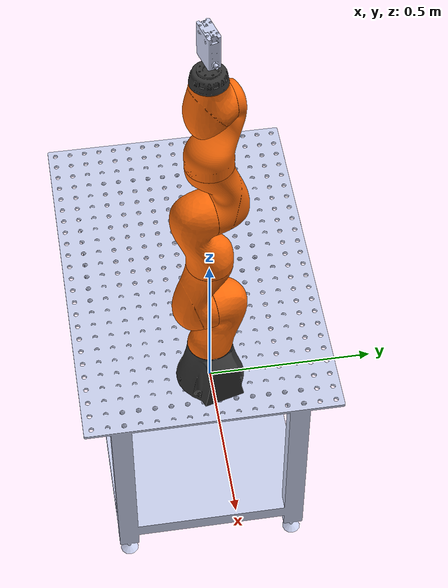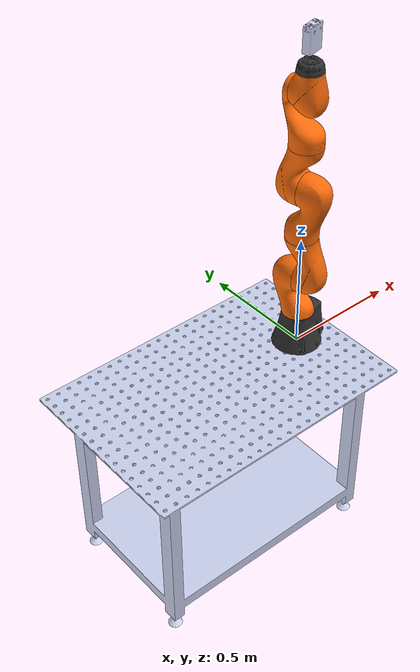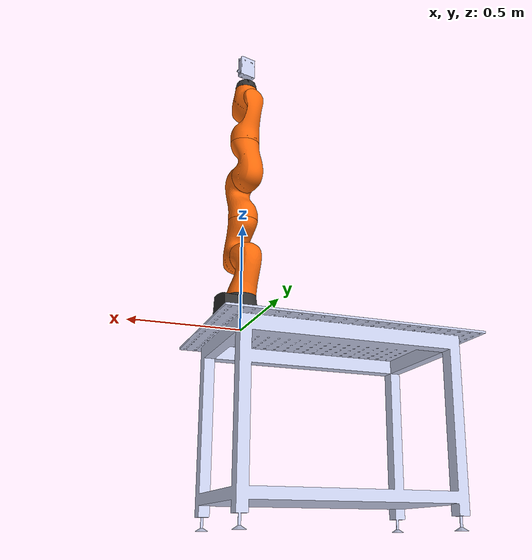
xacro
<?xml version="1.0"?>
<robot xmlns:xacro="http://www.ros.org/wiki/xacro" name="iiwa_zimmer">

  <xacro:include filename="$(find iiwa_description)/urdf/materials.xacro" />
  <xacro:include filename="$(find iiwa_description)/urdf/iiwa7.xacro"/>
  <xacro:include filename="$(find iiwa_description)/urdf/Table.xacro"/>
  <xacro:include filename="$(find iiwa_description)/urdf/zimmer.xacro"/>
  <xacro:arg name="hardware_interface" default="PositionJointInterface"/>
  <xacro:arg name="origin_xyz" default="0 0 0"/>
  <xacro:arg name="origin_rpy" default="0 0 0"/>
  <xacro:arg name="robot_name" default="iiwa"/>

  <link name="world"/>

  <xacro:table hardware_interface="$(arg hardware_interface)" robot_name="Table" parent="world">
    <origin xyz="$(arg origin_xyz)" rpy="$(arg origin_rpy)" />
  </xacro:table>

  <xacro:iiwa7 hardware_interface="$(arg hardware_interface)" robot_name="iiwa" parent="table_link">
    <origin xyz="0 0 0" rpy="1.5708 2.87979 0" />
  </xacro:iiwa7>

  <xacro:zimmer></xacro:zimmer>

  <joint name="zimmer_to_iiwa" type="fixed">
    <parent link="iiwa_link_ee"/>
    <child link="GEP5006IO-00-A(0)"/>
    <origin xyz="0 0 0.03" rpy="0 0 0"/>
  </joint>

</robot>

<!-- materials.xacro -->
<robot>

  <material name="Black">
    <color rgba="0.0 0.0 0.0 1.0"/>
  </material>

  <material name="Blue">
    <color rgba="0.0 0.0 0.8 1.0"/>
  </material>

  <material name="Green">
    <color rgba="0.0 0.8 0.0 1.0"/>
  </material>

  <material name="Grey">
    <color rgba="0.2 0.2 0.2 1.0"/>
  </material>

  <material name="Orange">
    <color rgba="${255/255} ${108/255} ${10/255} 1.0"/>
  </material>

  <material name="Brown">
    <color rgba="${222/255} ${207/255} ${195/255} 1.0"/>
  </material>

  <material name="Red">
    <color rgba="0.8 0.0 0.0 1.0"/>
  </material>

  <material name="White">
    <color rgba="1.0 1.0 1.0 1.0"/>
  </material>

</robot>

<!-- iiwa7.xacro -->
<robot xmlns:xacro="http://www.ros.org/wiki/xacro">

  <!-- Import all Gazebo-customization elements, including Gazebo colors -->
  <xacro:include filename="$(find iiwa_description)/urdf/iiwa.gazebo.xacro" />
  <!-- Import Transmissions -->
  <xacro:include filename="$(find iiwa_description)/urdf/iiwa.transmission.xacro" />
  <!-- Include Utilities -->
  <xacro:include filename="$(find iiwa_description)/urdf/utilities.xacro" />

  <!-- some constants -->
  <xacro:property name="safety_controller_k_pos" value="100" />
  <xacro:property name="safety_controller_k_vel" value="2" />
  <xacro:property name="joint_damping" value="0.5" />
  <xacro:property name="max_effort" value="300"/>
  <xacro:property name="max_velocity" value="10"/>

  <xacro:macro name="iiwa7" params="parent hardware_interface robot_name *origin">

    <!--joint between {parent} and link_0-->
    <joint name="${parent}_${robot_name}_joint" type="fixed">
      <xacro:insert_block name="origin"/>
      <parent link="${parent}"/>
      <child link="${robot_name}_link_0"/>
    </joint>

    <link name="${robot_name}_link_0">
      <inertial>
        <origin xyz="-0.1 0 0.07" rpy="0 0 0"/>
        <mass value="5"/>
        <inertia ixx="0.05"  ixy="0"  ixz="0" iyy="0.06" iyz="0" izz="0.03" />
      </inertial>

      <visual>
        <origin xyz="0 0 0" rpy="0 0 0"/>
        <geometry>
          <mesh filename="package://iiwa_description/meshes/iiwa7/visual/link_0.stl"/>
        </geometry>
        <material name="Grey"/>
      </visual>

      <collision>
        <origin xyz="0 0 0" rpy="0 0 0"/>
        <geometry>
          <mesh filename="package://iiwa_description/meshes/iiwa7/collision/link_0.stl"/>
        </geometry>
      </collision>

    </link>

    <!-- joint between link_0 and link_1 -->
    <joint name="${robot_name}_joint_1" type="revolute">
      <parent link="${robot_name}_link_0"/>
      <child link="${robot_name}_link_1"/>
      <origin xyz="0 0 0.15" rpy="0 0 0"/>
      <axis xyz="0 0 1"/>
      <limit lower="${-170 * PI / 180}" upper="${170 * PI / 180}"
             effort="${max_effort}" velocity="${max_velocity}" />
      <safety_controller soft_lower_limit="${-168 * PI / 180}"
                         soft_upper_limit="${168 * PI / 180}"
                         k_position="${safety_controller_k_pos}"
                         k_velocity="${safety_controller_k_vel}"/>
      <dynamics damping="${joint_damping}"/>
    </joint>

    <link name="${robot_name}_link_1">
      <inertial>
        <origin xyz="0 -0.03 0.12" rpy="0 0 0"/>
        <mass value="3.4525"/>
        <inertia ixx="0.02183"  ixy="0"  ixz="0" iyy="0.007703" iyz="-0.003887" izz="0.02083" />
      </inertial>
      <visual>
        <origin xyz="0 0 0.0075" rpy="0 0 0"/>
        <geometry>
          <mesh filename="package://iiwa_description/meshes/iiwa7/visual/link_1.stl"/>
        </geometry>
        <material name="Orange"/>
      </visual>
      <collision>
        <origin xyz="0 0 0.0075" rpy="0 0 0"/>
        <geometry>
          <mesh filename="package://iiwa_description/meshes/iiwa7/collision/link_1.stl"/>
        </geometry>
      </collision>
    </link>

    <joint name="${robot_name}_joint_2" type="revolute">
      <parent link="${robot_name}_link_1"/>
      <child link="${robot_name}_link_2"/>
      <origin xyz="0 0 0.19" rpy="${PI / 2}   0 ${PI}"/>
      <axis xyz="0 0 1"/>
      <limit lower="${-120 * PI / 180}" upper="${120 * PI / 180}"
             effort="${max_effort}" velocity="${max_velocity}" />
      <safety_controller soft_lower_limit="${-118 * PI / 180}"
                         soft_upper_limit="${118 * PI / 180}"
                         k_position="${safety_controller_k_pos}"
                         k_velocity="${safety_controller_k_vel}"/>
      <dynamics damping="${joint_damping}"/>
    </joint>

    <link name="${robot_name}_link_2">
      <inertial>
        <origin xyz="0.0003 0.059 0.042" rpy="0 0 0"/>
        <mass value="3.4821"/>
        <inertia ixx="0.02076"  ixy="0"  ixz="-0.003626" iyy="0.02179" iyz="0" izz="0.00779" />
      </inertial>
      <visual>
        <origin xyz="0 0 0" rpy="0 0 0"/>
        <geometry>
          <mesh filename="package://iiwa_description/meshes/iiwa7/visual/link_2.stl"/>
        </geometry>
        <material name="Orange"/>
      </visual>

      <collision>
        <origin xyz="0 0 0" rpy="0 0 0"/>
        <geometry>
          <mesh filename="package://iiwa_description/meshes/iiwa7/collision/link_2.stl"/>
        </geometry>
      </collision>
    </link>

    <joint name="${robot_name}_joint_3" type="revolute">
      <parent link="${robot_name}_link_2"/>
      <child link="${robot_name}_link_3"/>
      <origin xyz="0 0.21 0" rpy="${PI / 2} 0 ${PI}"/>
      <axis xyz="0 0 1"/>
      <limit lower="${-170 * PI / 180}" upper="${170 * PI / 180}"
             effort="${max_effort}" velocity="${max_velocity}" />
      <safety_controller soft_lower_limit="${-168 * PI / 180}"
                         soft_upper_limit="${168 * PI / 180}"
                         k_position="${safety_controller_k_pos}"
                         k_velocity="${safety_controller_k_vel}"/>
      <dynamics damping="${joint_damping}"/>
    </joint>

    <link name="${robot_name}_link_3">
      <inertial>
        <origin xyz="0 0.03 0.13" rpy="0 0 0"/>
        <mass value="4.05623"/>
        <inertia ixx="0.03204"  ixy="0"  ixz="0" iyy="0.00972" iyz="0.006227" izz="0.03042" />
      </inertial>

      <visual>
        <origin xyz="0 0 -0.026" rpy="0 0 0"/>
        <geometry>
          <mesh filename="package://iiwa_description/meshes/iiwa7/visual/link_3.stl"/>
        </geometry>
        <material name="Orange"/>
      </visual>

      <collision>
        <origin xyz="0 0 -0.026" rpy="0 0 0"/>
        <geometry>
          <mesh filename="package://iiwa_description/meshes/iiwa7/collision/link_3.stl"/>
        </geometry>
      </collision>

    </link>

    <joint name="${robot_name}_joint_4" type="revolute">
      <parent link="${robot_name}_link_3"/>
      <child link="${robot_name}_link_4"/>
      <origin xyz="0 0 0.19" rpy="${PI / 2} 0 0"/>
      <axis xyz="0 0 1"/>
      <limit lower="${-120 * PI / 180}" upper="${120 * PI / 180}"
             effort="${max_effort}" velocity="${max_velocity}" />
      <safety_controller soft_lower_limit="${-118 * PI / 180}"
                         soft_upper_limit="${118 * PI / 180}"
                         k_position="${safety_controller_k_pos}"
                         k_velocity="${safety_controller_k_vel}"/>
      <dynamics damping="${joint_damping}"/>
    </joint>

    <link name="${robot_name}_link_4">
      <inertial>
        <origin xyz="0 0.067 0.034" rpy="0 0 0"/>
        <mass value="3.4822"/>
        <inertia ixx="0.02178"  ixy="0"  ixz="0" iyy="0.02075" iyz="-0.003625" izz="0.007785" />
      </inertial>

      <visual>
        <origin xyz="0 0 0" rpy="0 0 0"/>
        <geometry>
          <mesh filename="package://iiwa_description/meshes/iiwa7/visual/link_4.stl"/>
        </geometry>
        <material name="Orange"/>
      </visual>

      <collision>
        <origin xyz="0 0 0" rpy="0 0 0"/>
        <geometry>
          <mesh filename="package://iiwa_description/meshes/iiwa7/collision/link_4.stl"/>
        </geometry>
      </collision>
    </link>

    <joint name="${robot_name}_joint_5" type="revolute">
      <parent link="${robot_name}_link_4"/>
      <child link="${robot_name}_link_5"/>
      <origin xyz="0 0.21 0" rpy="${-PI / 2} ${PI} 0"/>
      <axis xyz="0 0 1"/>
      <limit lower="${-170 * PI / 180}" upper="${170 * PI / 180}"
             effort="${max_effort}" velocity="${max_velocity}" />
      <safety_controller soft_lower_limit="${-168 * PI / 180}"
                         soft_upper_limit="${168 * PI / 180}"
                         k_position="${safety_controller_k_pos}"
                         k_velocity="${safety_controller_k_vel}"/>
      <dynamics damping="${joint_damping}"/>
    </joint>

    <link name="${robot_name}_link_5">
      <inertial>
        <origin xyz="0.0001 0.021 0.076" rpy="0 0 0"/>
        <mass value="2.1633"/>
        <inertia ixx="0.01287"  ixy="0"  ixz="0" iyy="0.005708" iyz="-0.003946" izz="0.01112" />
      </inertial>

      <visual>
        <origin xyz="0 0 -0.026" rpy="0 0 0"/>
        <geometry>
          <mesh filename="package://iiwa_description/meshes/iiwa7/visual/link_5.stl"/>
        </geometry>
        <material name="Orange"/>
      </visual>

      <collision>
        <origin xyz="0 0 -0.026" rpy="0 0 0"/>
        <geometry>
          <mesh filename="package://iiwa_description/meshes/iiwa7/collision/link_5.stl"/>
        </geometry>
      </collision>
    </link>

    <joint name="${robot_name}_joint_6" type="revolute">
      <parent link="${robot_name}_link_5"/>
      <child link="${robot_name}_link_6"/>
      <origin xyz="0 0.06070 0.19" rpy="${PI / 2} 0 0"/>
      <axis xyz="0 0 1"/>
      <limit lower="${-120 * PI / 180}" upper="${120 * PI / 180}"
             effort="${max_effort}" velocity="${max_velocity}" />
      <safety_controller soft_lower_limit="${-118 * PI / 180}"
                         soft_upper_limit="${118 * PI / 180}"
                         k_position="${safety_controller_k_pos}"
                         k_velocity="${safety_controller_k_vel}"/>
      <dynamics damping="${joint_damping}"/>
    </joint>

    <link name="${robot_name}_link_6">
      <inertial>
        <origin xyz="0 0.0006 0.0004" rpy="0 0 0"/>
        <mass value="2.3466"/>
        <inertia ixx="0.006509"  ixy="0"  ixz="0" iyy="0.006259" iyz="0.00031891" izz="0.004527" />
      </inertial>

      <visual>
        <origin xyz="0 0 0" rpy="0 0 0"/>
        <geometry>
          <mesh filename="package://iiwa_description/meshes/iiwa7/visual/link_6.stl"/>
        </geometry>
        <material name="Orange"/>
      </visual>

      <collision>
        <origin xyz="0 0 0" rpy="0 0 0"/>
        <geometry>
          <mesh filename="package://iiwa_description/meshes/iiwa7/collision/link_6.stl"/>
        </geometry>
      </collision>
    </link>

    <joint name="${robot_name}_joint_7" type="revolute">
      <parent link="${robot_name}_link_6"/>
      <child link="${robot_name}_link_7"/>
      <origin xyz="0 0.081 0.06070" rpy="${- PI / 2} ${PI} 0"/>
      <axis xyz="0 0 1"/>
      <limit lower="${-175 * PI / 180}" upper="${175 * PI / 180}"
             effort="${max_effort}" velocity="${max_velocity}" />
      <safety_controller soft_lower_limit="${-173 * PI / 180}"
                         soft_upper_limit="${173 * PI / 180}"
                         k_position="${safety_controller_k_pos}"
                         k_velocity="${safety_controller_k_vel}"/>
      <dynamics damping="${joint_damping}"/>
    </joint>

    <link name="${robot_name}_link_7">
      <inertial>
        <origin xyz="0 0 0.02" rpy="0 0 0"/>
        <mass value="3.129"/>
        <inertia ixx="0.01464"  ixy="0.0005912"  ixz="0" iyy="0.01465" iyz="0" izz="0.002872" />
      </inertial>

      <visual>
        <origin xyz="0 0 -0.0005" rpy="0 0 0"/>
        <geometry>
          <mesh filename="package://iiwa_description/meshes/iiwa7/visual/link_7.stl"/>
        </geometry>
        <material name="Grey"/>
      </visual>

      <collision>
        <origin xyz="0 0 -0.0005" rpy="0 0 0"/>
        <geometry>
          <mesh filename="package://iiwa_description/meshes/iiwa7/collision/link_7.stl"/>
        </geometry>
      </collision>
    </link>

    <joint name="${robot_name}_joint_ee" type="fixed">
      <parent link="${robot_name}_link_7"/>
      <child link="${robot_name}_link_ee"/>
      <origin xyz="0 0 0.045" rpy="0 0 0"/>
    </joint>

    <link name="${robot_name}_link_ee">
    </link>

    <!--Extensions -->
    <xacro:iiwa_gazebo robot_name="${robot_name}" />
    <xacro:iiwa_transmission hardware_interface="${hardware_interface}"/>

  </xacro:macro>

</robot>

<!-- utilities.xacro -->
<robot name="iiwa" xmlns:xacro="http://www.ros.org/wiki/xacro">

  <xacro:property name="PI" value="3.1415926535897931"/>

<!-- The following macros are adapted from the LWR 4 definitions of the RCPRG - https://github.com/RCPRG-ros-pkg/lwr_robot -->
  <!--Little helper macros to define the inertia matrix needed for links.-->
  <!--Cuboid-->
  <xacro:macro name="cuboid_inertia" params="width height length mass">
    <inertia ixx="${mass * (height * height + length * length) / 12)}"
             iyy="${mass * (width * width + length * length) / 12)}"
             izz="${mass * (width * width + height * height) / 12)}"
             ixy="0" iyz="0" ixz="0"/>
  </xacro:macro>

  <!--Cylinder: length is along the y-axis! -->
  <xacro:macro name="cylinder_inertia" params="radius length mass">
    <inertia ixx="${mass * (3 * radius * radius + length * length) / 12)}"
             iyy="${mass * radius* radius / 2)}"
             izz="${mass * (3 * radius * radius + length * length) / 12)}"
             ixy="0" iyz="0" ixz="0"/>
  </xacro:macro>

</robot>

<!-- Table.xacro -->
<robot xmlns:xacro="http://www.ros.org/wiki/xacro" name="table">
<xacro:macro name="table" params="parent hardware_interface robot_name *origin">

  <joint name="world_to_base" type="fixed">
    <parent link="${parent}"/>
    <child link="base_link"/>
    <origin xyz="0 0 0" rpy="-1.5708 0 0"/>
  </joint>

  <link name="base_link"/>

  <joint name="base_to_table" type="fixed">
    <parent link="base_link"/>
    <child link="table_link"/>
    <origin xyz="0 0 0" rpy="0 0 0"/>
  </joint>

  <link name="table_link">
    <inertial>
      <origin
        xyz="-0.41999987758599 0.441517808644207 -0.00999999708538072"
        rpy="0 0 0" />
      <mass
        value="61.7576369744611" />
      <inertia
        ixx="9.36626879067317"
        ixy="3.3397646292658E-06"
        ixz="-6.17756606248572E-08"
        iyy="10.4949464928445"
        iyz="7.95182066201114E-08"
        izz="13.8602771741833" />
    </inertial>
    <visual>
      <origin
        xyz="0 0 0"
        rpy="0 0 0" />
      <geometry>
        <mesh
          filename="package://iiwa_description/meshes/table_link.STL" />
      </geometry>
      <material
        name="">
        <color
          rgba="0.792156862745098 0.819607843137255 0.933333333333333 1" />
      </material>
    </visual>
    <collision>
      <origin
        xyz="0 0 0"
        rpy="0 0 0" />
      <geometry>
        <mesh
          filename="package://iiwa_description/meshes/table_link.STL" />
      </geometry>
    </collision>
  </link>

</xacro:macro>
</robot>

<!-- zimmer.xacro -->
<robot xmlns:xacro="http://www.ros.org/wiki/xacro">

  <xacro:macro name="zimmer">
    <link
      name="GEP5006IO-00-A(0)">
      <inertial>
        <origin
          xyz="0 0 0"
          rpy="0 0 0" />
        <mass
          value="0" />
        <inertia
          ixx="0"
          ixy="0"
          ixz="0"
          iyy="0"
          iyz="0"
          izz="0" />
      </inertial>
      <visual>
        <origin
          xyz="0 0 0"
          rpy="1.5707963267949 0 0" />
        <geometry>
          <mesh
            filename="package://iiwa_description/meshes/zimmer.stl"
            scale = "0.001 0.001 0.001"/>
        </geometry>
        <material
          name="">
          <color
            rgba="0.79216 0.81961 0.93333 1" />
        </material>
      </visual>
      <collision>
        <origin
          xyz="0 0 0"
          rpy="1.5707963267949 0 0" />
        <geometry>
          <mesh
            filename="package://iiwa_description/meshes/zimmer.stl"
            scale = "0.001 0.001 0.001" />
        </geometry>
      </collision>
    </link>
  </xacro:macro>
</robot>
